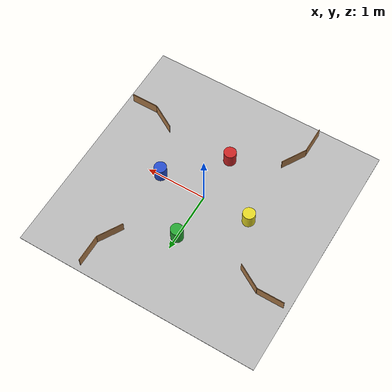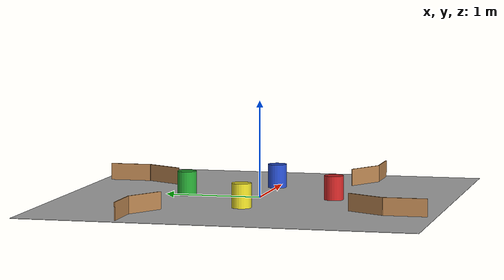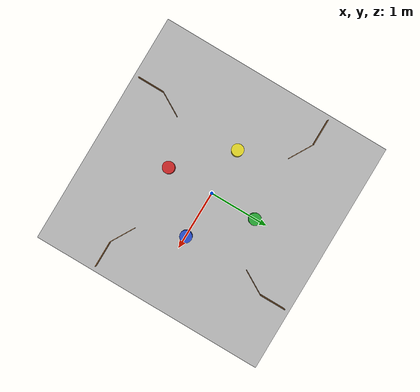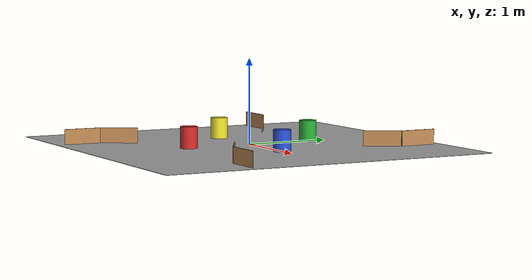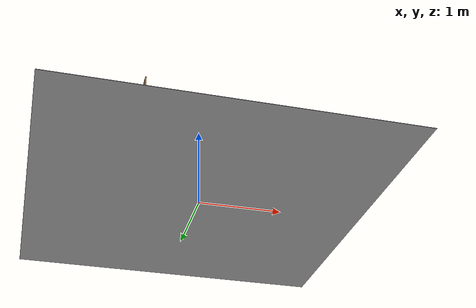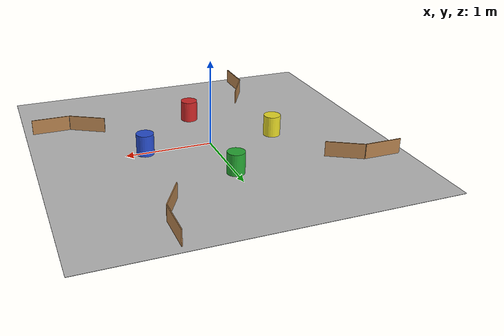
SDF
<?xml version="1.0"?>
<sdf version="1.4">
<model name="acs6121">
  <static>true</static>
    <link name="floor">
      <collision name="collision">
        <geometry>
          <plane>
            <normal>0 0 1</normal>
            <size>4.0 4.0</size>
          </plane>
        </geometry>
        <surface>
          <friction>
            <ode>
              <mu>100</mu>
              <mu2>50</mu2>
            </ode>
          </friction>
        </surface>
      </collision>
      <visual name="visual">
        <cast_shadows>false</cast_shadows>
        <geometry>
          <plane>
            <normal>0 0 1</normal>
            <size>4.0 4.0</size>
          </plane>
        </geometry>
        <material>
          <script>
            <uri>model://acs6121/materials/scripts</uri>
            <uri>model://acs6121/materials/textures</uri>
            <name>acs6121Floor/Image</name>
          </script>
        </material>
      </visual>
    </link>
    <link name='YEL'>
      <pose frame=''>-0.78 0 0.125 0 0 0</pose>
      <collision name='coll'>
        <geometry>
          <cylinder>
            <radius>0.1</radius>
            <length>0.25</length>
          </cylinder>
        </geometry>
        <max_contacts>10</max_contacts>
        <surface>
          <bounce/>
          <friction>
            <ode/>
          </friction>
          <contact>
            <ode/>
          </contact>
        </surface>
      </collision>
      <visual name='vis'>
        <geometry>
          <cylinder>
            <radius>0.1</radius>
            <length>0.25</length>
          </cylinder>
        </geometry>
        <material>
          <script>
            <uri>file://media/materials/scripts/gazebo.material</uri>
            <name>Gazebo/Yellow</name>
          </script>
        </material>
      </visual>
    </link>
    <link name='GRN'>
      <pose frame=''>0 0.78 0.125 0 0 0</pose>
      <collision name='coll'>
        <geometry>
          <cylinder>
            <radius>0.1</radius>
            <length>0.25</length>
          </cylinder>
        </geometry>
        <max_contacts>10</max_contacts>
        <surface>
          <bounce/>
          <friction>
            <ode/>
          </friction>
          <contact>
            <ode/>
          </contact>
        </surface>
      </collision>
      <visual name='vis'>
        <geometry>
          <cylinder>
            <radius>0.1</radius>
            <length>0.25</length>
          </cylinder>
        </geometry>
        <material>
          <script>
            <uri>file://media/materials/scripts/gazebo.material</uri>
            <name>Gazebo/Green</name>
          </script>
        </material>
      </visual>
    </link>
    <link name='RED'>
      <pose frame=''>0 -0.78 0.125 0 0 0</pose>
      <collision name='coll'>
        <geometry>
          <cylinder>
            <radius>0.1</radius>
            <length>0.25</length>
          </cylinder>
        </geometry>
        <max_contacts>10</max_contacts>
        <surface>
          <bounce/>
          <friction>
            <ode/>
          </friction>
          <contact>
            <ode/>
          </contact>
        </surface>
      </collision>
      <visual name='vis'>
        <geometry>
          <cylinder>
            <radius>0.1</radius>
            <length>0.25</length>
          </cylinder>
        </geometry>
        <material>
          <script>
            <uri>file://media/materials/scripts/gazebo.material</uri>
            <name>Gazebo/Red</name>
          </script>
        </material>
      </visual>
    </link>
    <link name='BLU'>
      <pose frame=''>0.78 0 0.125 0 0 0</pose>
      <collision name='coll'>
        <geometry>
          <cylinder>
            <radius>0.1</radius>
            <length>0.25</length>
          </cylinder>
        </geometry>
        <max_contacts>10</max_contacts>
        <surface>
          <bounce/>
          <friction>
            <ode/>
          </friction>
          <contact>
            <ode/>
          </contact>
        </surface>
      </collision>
      <visual name='vis'>
        <geometry>
          <cylinder>
            <radius>0.1</radius>
            <length>0.25</length>
          </cylinder>
        </geometry>
        <material>
          <script>
            <uri>file://media/materials/scripts/gazebo.material</uri>
            <name>Gazebo/Blue</name>
          </script>
        </material>
      </visual>
    </link>

    <link name='wall_asm1'>
      <pose frame=''>-1.49366 0.86067 0.09 0 0 0</pose>
        <collision name='long_col'>
          <pose frame=''>-0.19492 0.10933 0 0 0 0</pose>
          <geometry>
            <box>
              <size>0.44 0.01 0.18</size>
            </box>
          </geometry>
        </collision>
        <visual name='long_vis'>
          <pose frame=''>-0.19492 0.10933 0 0 0 0</pose>
          <geometry>
            <box>
              <size>0.44 0.01 0.18</size>
            </box>
          </geometry>
          <material>
            <script>
              <uri>file://media/materials/scripts/gazebo.material</uri>
              <name>Gazebo/Wood</name>
            </script>
          </material>
        </visual>
        <collision name='short_coll'>
          <pose frame=''>0.22189 0 0 0 0 -0.5236</pose>
          <geometry>
            <box>
              <size>0.44 0.01 0.18</size>
            </box>
          </geometry>
        </collision>
        <visual name='short_vis'>
          <pose frame=''>0.22189 0 0 0 0 -0.5236</pose>
          <geometry>
            <box>
              <size>0.44 0.01 0.18</size>
            </box>
          </geometry>
          <material>
            <script>
              <uri>file://media/materials/scripts/gazebo.material</uri>
              <name>Gazebo/Wood</name>
            </script>
          </material>
        </visual>
    </link>

    <link name='wall_asm2'>
      <pose frame=''>0.86067 1.49366 0.09 0 0 -1.571</pose>
        <collision name='long_col'>
          <pose frame=''>-0.19492 0.10933 0 0 0 0</pose>
          <geometry>
            <box>
              <size>0.44 0.01 0.18</size>
            </box>
          </geometry>
        </collision>
        <visual name='long_vis'>
          <pose frame=''>-0.19492 0.10933 0 0 0 0</pose>
          <geometry>
            <box>
              <size>0.44 0.01 0.18</size>
            </box>
          </geometry>
          <material>
            <script>
              <uri>file://media/materials/scripts/gazebo.material</uri>
              <name>Gazebo/Wood</name>
            </script>
          </material>
        </visual>
        <collision name='short_coll'>
          <pose frame=''>0.22189 0 0 0 0 -0.5236</pose>
          <geometry>
            <box>
              <size>0.44 0.01 0.18</size>
            </box>
          </geometry>
        </collision>
        <visual name='short_vis'>
          <pose frame=''>0.22189 0 0 0 0 -0.5236</pose>
          <geometry>
            <box>
              <size>0.44 0.01 0.18</size>
            </box>
          </geometry>
          <material>
            <script>
              <uri>file://media/materials/scripts/gazebo.material</uri>
              <name>Gazebo/Wood</name>
            </script>
          </material>
        </visual>
    </link>

    <link name='wall_asm3'>
      <pose frame=''>1.49366 -0.86067 0.09 0 0 3.142</pose>
        <collision name='long_col'>
          <pose frame=''>-0.19492 0.10933 0 0 0 0</pose>
          <geometry>
            <box>
              <size>0.44 0.01 0.18</size>
            </box>
          </geometry>
        </collision>
        <visual name='long_vis'>
          <pose frame=''>-0.19492 0.10933 0 0 0 0</pose>
          <geometry>
            <box>
              <size>0.44 0.01 0.18</size>
            </box>
          </geometry>
          <material>
            <script>
              <uri>file://media/materials/scripts/gazebo.material</uri>
              <name>Gazebo/Wood</name>
            </script>
          </material>
        </visual>
        <collision name='short_coll'>
          <pose frame=''>0.22189 0 0 0 0 -0.5236</pose>
          <geometry>
            <box>
              <size>0.44 0.01 0.18</size>
            </box>
          </geometry>
        </collision>
        <visual name='short_vis'>
          <pose frame=''>0.22189 0 0 0 0 -0.5236</pose>
          <geometry>
            <box>
              <size>0.44 0.01 0.18</size>
            </box>
          </geometry>
          <material>
            <script>
              <uri>file://media/materials/scripts/gazebo.material</uri>
              <name>Gazebo/Wood</name>
            </script>
          </material>
        </visual>
    </link>

    <link name='wall_asm4'>
      <pose frame=''>-0.86067 -1.49366 0.09 0 0 1.571</pose>
        <collision name='long_col'>
          <pose frame=''>-0.19492 0.10933 0 0 0 0</pose>
          <geometry>
            <box>
              <size>0.44 0.01 0.18</size>
            </box>
          </geometry>
        </collision>
        <visual name='long_vis'>
          <pose frame=''>-0.19492 0.10933 0 0 0 0</pose>
          <geometry>
            <box>
              <size>0.44 0.01 0.18</size>
            </box>
          </geometry>
          <material>
            <script>
              <uri>file://media/materials/scripts/gazebo.material</uri>
              <name>Gazebo/Wood</name>
            </script>
          </material>
        </visual>
        <collision name='short_coll'>
          <pose frame=''>0.22189 0 0 0 0 -0.5236</pose>
          <geometry>
            <box>
              <size>0.44 0.01 0.18</size>
            </box>
          </geometry>
        </collision>
        <visual name='short_vis'>
          <pose frame=''>0.22189 0 0 0 0 -0.5236</pose>
          <geometry>
            <box>
              <size>0.44 0.01 0.18</size>
            </box>
          </geometry>
          <material>
            <script>
              <uri>file://media/materials/scripts/gazebo.material</uri>
              <name>Gazebo/Wood</name>
            </script>
          </material>
        </visual>
    </link>

  </model>
</sdf>
